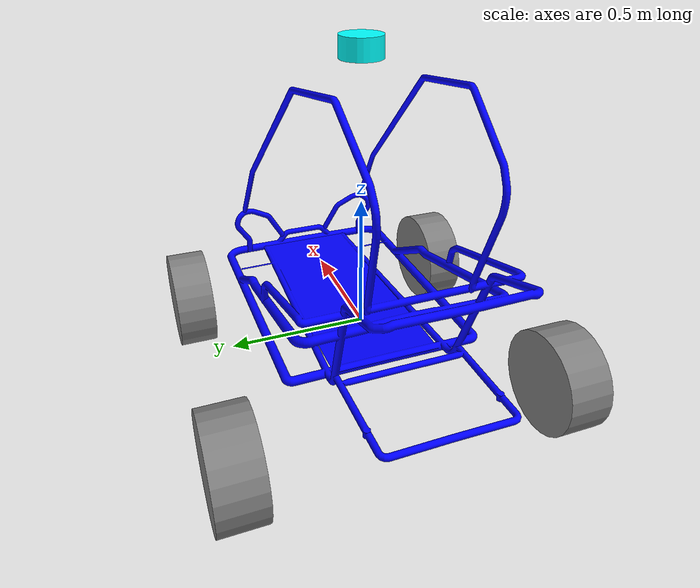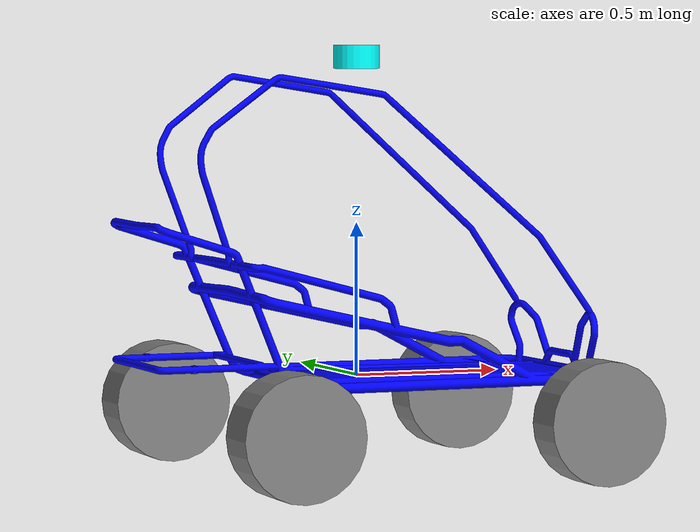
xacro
<?xml version="1.0"?>
<robot name="new_car" xmlns:xacro="http://ros.org/wiki/xacro">

  <!-- Define robot constants -->
  <xacro:property name="base_length" value="1.65"/>
  <xacro:property name="base_width" value="0.92"/>
  <xacro:property name="base_height" value="1.13"/>

  <xacro:property name="wheel_radius" value="0.2"/>
  <xacro:property name="front_wheel_width" value="0.15"/>
  <xacro:property name="rear_wheel_width" value="0.17"/>
  <xacro:property name="front_wheel_ygap" value="0.12"/>
  <xacro:property name="rear_wheel_ygap" value="0.15"/>
  <xacro:property name="wheel_zoff" value="0.123"/>
  <xacro:property name="front_wheel_xoff" value="0.6"/>
  <xacro:property name="rear_wheel_xoff" value="0.45"/>

  <!-- Robot Base -->
  <link name="base_link">
    <visual>
      <origin xyz="0 0 0" rpy="0 0 0" />
      <geometry>
        <mesh filename="package://robot_description/description/meshes/new_car_chassis.stl" scale="0.58 0.58 0.58"/>
      </geometry>
      <material name="Blue">
        <color rgba="0.0 0.0 1.0 1"/>
      </material>
    </visual>
  </link>

   <!-- Robot Footprint -->
  <link name="base_footprint"/>

  <joint name="base_joint" type="fixed">
    <parent link="base_link"/>
    <child link="base_footprint"/>
    <origin xyz="0.0 0.0 ${-(wheel_radius+wheel_zoff)}" rpy="0 0 0"/>
  </joint>

  <!-- Rear Wheels -->
  <xacro:macro name="rear_wheel" params="prefix x_reflect y_reflect">
    <link name="${prefix}_link">
      <visual>
        <origin xyz="0 0 0" rpy="${pi/2} 0 0"/>
        <geometry>
            <cylinder radius="${wheel_radius}" length="${rear_wheel_width}"/>
        </geometry>
        <material name="Gray">
          <color rgba="0.5 0.5 0.5 1.0"/>
        </material>
      </visual>
    </link>

    <joint name="${prefix}_wheel_joint" type="continuous">
      <parent link="base_link"/>
      <child link="${prefix}_link"/>
      <origin xyz="${x_reflect*rear_wheel_xoff} ${y_reflect*(base_width/2+rear_wheel_ygap)} ${-wheel_zoff}" rpy="0 0 0"/>
      <axis xyz="0 1 0"/>
    </joint>
  </xacro:macro>

  <!-- Steering Wheels -->
  <xacro:macro name="steeringwheels" params="prefix x_reflect y_reflect">
    <!-- Steering Link -->
    <link name="${prefix}_steering_link">
      <visual>
        <origin xyz="0 0 0" rpy="0 0 0"/>
        <geometry>
          <cylinder radius="0.01" length="0.1"/> <!-- Small cylinder for visual debugging -->
        </geometry>
        <material name="Gray">
          <color rgba="0.5 0.5 0.5 1.0"/>
        </material>
      </visual>
    </link>

    <!-- Steering Joint -->
    <joint name="${prefix}_steering_joint" type="revolute">
      <parent link="base_link"/>
      <child link="${prefix}_steering_link"/>
      <origin xyz="${x_reflect*front_wheel_xoff} ${y_reflect*(base_width/2+front_wheel_ygap)} ${-wheel_zoff}" rpy="0 0 0"/>
      <axis xyz="0 0 1"/>
      <limit effort="1000.0" lower="-0.698" upper="0.698" velocity="0.5"/>
    </joint>

    <!-- Wheel Link -->
    <link name="${prefix}_wheel_link">
      <visual>
        <origin xyz="0 0 0" rpy="${pi/2} 0 0"/>
        <geometry>
          <cylinder radius="${wheel_radius}" length="${front_wheel_width}"/>
        </geometry>
        <material name="Gray">
          <color rgba="0.5 0.5 0.5 1.0"/>
        </material>
      </visual>
    </link>

    <!-- Wheel Joint -->
    <joint name="${prefix}_wheel_joint" type="continuous">
      <parent link="${prefix}_steering_link"/>
      <child link="${prefix}_wheel_link"/>
      <origin xyz="0 0 0" rpy="0 0 0"/>
      <axis xyz="0 1 0"/>
    </joint>
  </xacro:macro>

 <xacro:steeringwheels prefix="Front_Left" x_reflect="1" y_reflect="1" />
  <xacro:steeringwheels prefix="Front_Right" x_reflect="1" y_reflect="-1" />
  <xacro:rear_wheel prefix="Rear_Left" x_reflect="-1" y_reflect="1" />
  <xacro:rear_wheel prefix="Rear_Right" x_reflect="-1" y_reflect="-1" />

  <!-- Lidar -->
  <link name="velodyne">
    <visual>
      <origin xyz="0 0 0" rpy="0 0 0" />
      <geometry>
        <cylinder radius=".0762" length=".0762"/>
      </geometry>
      <material name="Cyan">
        <color rgba="0 1.0 1.0 1.0"/>
      </material>
    </visual>
  </link>
  <joint name="velodyne_joint" type="fixed">
    <parent link="base_link"/>
    <child link="velodyne"/>
    <origin xyz ="0 0 1.0414" rpy="0 0 0"/>
  </joint>

  <!-- Gazebo Plugins -->

</robot>
